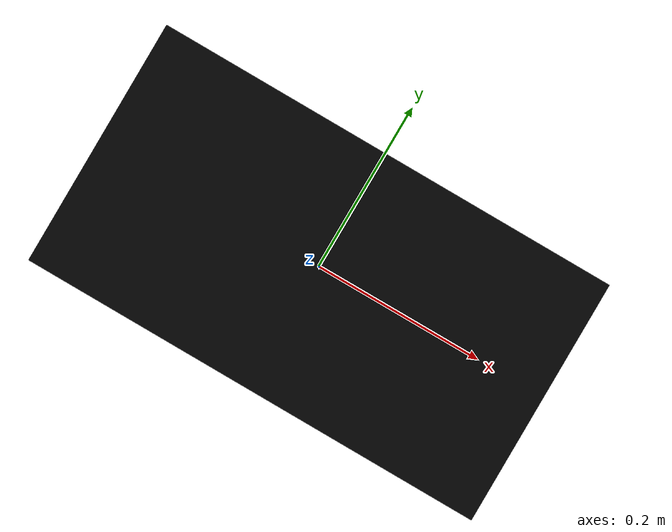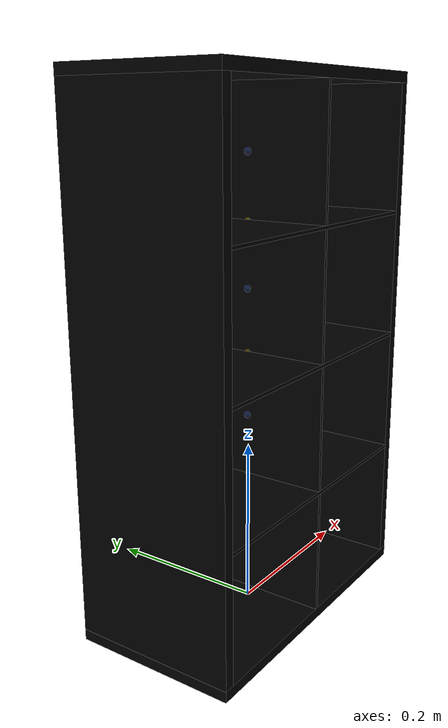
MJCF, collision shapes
<mujoco model="bookcase_expedit_0376">
  <custom>
    <numeric data="-0.610358 0.179496 0.00633 0.707062 -0.007954 -0.707062 -0.007954" name="0_part0_initpos" />
    <numeric data="0.140723 0.068538 0.00633 0.999959 -0.0 -0.0 -0.009001" name="10_part9_initpos" />
    <numeric data="0.565507 -0.128144 0.001878 0.999962 0.0 -0.0 -0.008745" name="9_part8_initpos" />
    <numeric data="0.543897 0.119211 0.001878 0.999936 0.0 -0.0 0.011288" name="8_part7_initpos" />
    <numeric data="0.135882 0.347456 0.001878 0.999938 0.0 0.0 0.011097" name="7_part6_initpos" />
    <numeric data="-0.403732 -0.095554 0.001982 0.707107 1.5e-05 -0.707107 1.4e-05" name="6_part5_initpos" />
    <numeric data="0.248668 -0.151192 0.001878 0.498788 0.501209 0.498788 -0.501209" name="5_part4_initpos" />
    <numeric data="0.040847 -0.184879 0.001878 0.707089 -0.005013 -0.707089 -0.005013" name="4_part3_initpos" />
    <numeric data="-0.59904 -0.091625 0.001878 0.706827 -0.019886 -0.706827 -0.019886" name="3_part2_initpos" />
    <numeric data="0.531999 0.371208 0.00633 1.0 -0.0 0.0 -5e-06" name="2_part10_initpos" />
    <numeric data="-0.187738 0.117936 0.00633 -0.499983 -0.500017 0.499983 -0.500017" name="1_part1_initpos" />
  </custom>
  <asset>
    <mesh file="bookcase_expedit_0376/0.stl" name="part0" scale="0.000250416 0.000250416 0.000250416" />
    <mesh file="bookcase_expedit_0376/9.stl" name="part9" scale="0.000250416 0.000250416 0.000250416" />
    <mesh file="bookcase_expedit_0376/8.stl" name="part8" scale="0.000250416 0.000250416 0.000250416" />
    <mesh file="bookcase_expedit_0376/7.stl" name="part7" scale="0.000250416 0.000250416 0.000250416" />
    <mesh file="bookcase_expedit_0376/6.stl" name="part6" scale="0.000250416 0.000250416 0.000250416" />
    <mesh file="bookcase_expedit_0376/5.stl" name="part5" scale="0.000250416 0.000250416 0.000250416" />
    <mesh file="bookcase_expedit_0376/4.stl" name="part4" scale="0.000250416 0.000250416 0.000250416" />
    <mesh file="bookcase_expedit_0376/3.stl" name="part3" scale="0.000250416 0.000250416 0.000250416" />
    <mesh file="bookcase_expedit_0376/2.stl" name="part2" scale="0.000250416 0.000250416 0.000250416" />
    <mesh file="bookcase_expedit_0376/10.stl" name="part10" scale="0.000250416 0.000250416 0.000250416" />
    <mesh file="bookcase_expedit_0376/1.stl" name="part1" scale="0.000250416 0.000250416 0.000250416" />
  </asset>
  <worldbody><body name="combined_body" pos="0.18 0 0.316126904" quat="1 0 0 0"><geom conaffinity="0" contype="0" density="0" mesh="part0" name="0_part0_mesh" pos="0.0 0.0 -3.0049919999999998e-09" rgba="0.82 0.71 0.55 1" type="mesh" quat="1 0 0 0" />
      <geom density="50" name="noviz_collision_0_part1_0" pos="0.0 0.0 -3.0049919999999998e-09" quat="1 0 0 0" rgba="0 0 0 0" size="0.00637111893024 0.09898631460000001 0.30212690400000003" solref="0.001 1" type="box" />
    <site name="0_part0_horizontal_radius_site" pos="0.0 0.0 -3.0049919999999998e-09" quat="1 0 0 0" rgba="0 0 0 0" size="0.000250416" />
      <site name="0_part0_top_site" pos="0.0 0.0 -3.0049919999999998e-09" quat="1 0 0 0" rgba="0 0 0 0" size="0.000250416" />
      <site name="0_part0_bottom_site" pos="0.0 0.0 -3.0049919999999998e-09" quat="1 0 0 0" rgba="0 0 0 0" size="0.000250416" />
      <site name="0_part0_corner_site8" pos="0.0 0.0 -3.0049919999999998e-09" quat="1 0 0 0" rgba="0 0 0 0" size="0.00500832" />
      <site name="0_part0_corner_site7" pos="0.0 0.0 -3.0049919999999998e-09" quat="1 0 0 0" rgba="0 0 0 0" size="0.00500832" />
      <site name="0_part0_corner_site6" pos="0.0 0.0 -3.0049919999999998e-09" quat="1 0 0 0" rgba="0 0 0 0" size="0.00500832" />
      <site name="0_part0_corner_site5" pos="0.0 0.0 -3.0049919999999998e-09" quat="1 0 0 0" rgba="0 0 0 0" size="0.00500832" />
      <site name="0_part0_corner_site4" pos="0.0 0.0 -3.0049919999999998e-09" quat="1 0 0 0" rgba="0 0 0 0" size="0.00500832" />
      <site name="0_part0_corner_site3" pos="0.0 0.0 -3.0049919999999998e-09" quat="1 0 0 0" rgba="0 0 0 0" size="0.00500832" />
      <site name="0_part0_corner_site2" pos="0.0 0.0 -3.0049919999999998e-09" quat="1 0 0 0" rgba="0 0 0 0" size="0.00500832" />
      <site name="0_part0_corner_site1" pos="0.0 0.0 -3.0049919999999998e-09" quat="1 0 0 0" rgba="0 0 0 0" size="0.00500832" />
      <site name="rightwall-floor,0,conn_site1" pos="0.0 0.0 -3.0049919999999998e-09" quat="1 0 0 0" rgba="0.9019 0.0980 0.2941 0.3" size="0.00500832" />
      <site name="rightwall-top,0,conn_site1" pos="0.0 0.0 -3.0049919999999998e-09" quat="1 0 0 0" rgba="0.2352 0.7058 0.2941 0.3" size="0.00500832" />
      <geom conaffinity="0" contype="0" density="0" mesh="part9" name="10_part9_mesh" pos="-0.18008353620000003 -1.5275376000000001e-09 0.30848746439001606" rgba="0.82 0.71 0.55 1" type="mesh" quat="1 0 0 0" />
      <geom density="50" name="noviz_collision_10_part9_0" pos="-0.18008353620000003 -1.5275376000000001e-09 0.30848746439001606" quat="1 0 0 0" rgba="0 0 0 0" size="0.18644410260000002 0.09898631460000001 0.006360571408320001" solref="0.001 1" type="box" />
    <site name="10_part9_horizontal_radius_site" pos="-0.18008353620000003 -1.5275376000000001e-09 0.30848746439001606" quat="1 0 0 0" rgba="0 0 0 0" size="0.000250416" />
      <site name="10_part9_top_site" pos="-0.18008353620000003 -1.5275376000000001e-09 0.30848746439001606" quat="1 0 0 0" rgba="0 0 0 0" size="0.000250416" />
      <site name="10_part9_bottom_site" pos="-0.18008353620000003 -1.5275376000000001e-09 0.30848746439001606" quat="1 0 0 0" rgba="0 0 0 0" size="0.000250416" />
      <site name="10_part9_corner_site8" pos="-0.18008353620000003 -1.5275376000000001e-09 0.30848746439001606" quat="1 0 0 0" rgba="0 0 0 0" size="0.00500832" />
      <site name="10_part9_corner_site7" pos="-0.18008353620000003 -1.5275376000000001e-09 0.30848746439001606" quat="1 0 0 0" rgba="0 0 0 0" size="0.00500832" />
      <site name="10_part9_corner_site6" pos="-0.18008353620000003 -1.5275376000000001e-09 0.30848746439001606" quat="1 0 0 0" rgba="0 0 0 0" size="0.00500832" />
      <site name="10_part9_corner_site5" pos="-0.18008353620000003 -1.5275376000000001e-09 0.30848746439001606" quat="1 0 0 0" rgba="0 0 0 0" size="0.00500832" />
      <site name="10_part9_corner_site4" pos="-0.18008353620000003 -1.5275376000000001e-09 0.30848746439001606" quat="1 0 0 0" rgba="0 0 0 0" size="0.00500832" />
      <site name="10_part9_corner_site3" pos="-0.18008353620000003 -1.5275376000000001e-09 0.30848746439001606" quat="1 0 0 0" rgba="0 0 0 0" size="0.00500832" />
      <site name="10_part9_corner_site2" pos="-0.18008353620000003 -1.5275376000000001e-09 0.30848746439001606" quat="1 0 0 0" rgba="0 0 0 0" size="0.00500832" />
      <site name="10_part9_corner_site1" pos="-0.18008353620000003 -1.5275376000000001e-09 0.30848746439001606" quat="1 0 0 0" rgba="0 0 0 0" size="0.00500832" />
      <site name="top-rightwall,0,conn_site1" pos="-0.18008353620000003 -1.5275376000000001e-09 0.30848746439001606" quat="1 0 0 0" rgba="0.2352 0.7058 0.2941 0.3" size="0.00500832" />
      <geom conaffinity="0" contype="0" density="0" mesh="part8" name="9_part8_mesh" pos="-0.18008353620000003 0.0 -6.0099839999999996e-09" rgba="0.82 0.71 0.55 1" type="mesh" quat="1 0 0 0" />
      <geom density="50" name="noviz_collision_9_part8_0" pos="-0.18008353620000003 0.0 -6.0099839999999996e-09" quat="1 0 0 0" rgba="0 0 0 0" size="0.1737229698 0.09898631460000001 0.00190816992" solref="0.001 1" type="box" />
    <site name="9_part8_horizontal_radius_site" pos="-0.18008353620000003 0.0 -6.0099839999999996e-09" quat="1 0 0 0" rgba="0 0 0 0" size="0.000250416" />
      <site name="9_part8_top_site" pos="-0.18008353620000003 0.0 -6.0099839999999996e-09" quat="1 0 0 0" rgba="0 0 0 0" size="0.000250416" />
      <site name="9_part8_bottom_site" pos="-0.18008353620000003 0.0 -6.0099839999999996e-09" quat="1 0 0 0" rgba="0 0 0 0" size="0.000250416" />
      <site name="9_part8_corner_site8" pos="-0.18008353620000003 0.0 -6.0099839999999996e-09" quat="1 0 0 0" rgba="0 0 0 0" size="0.00500832" />
      <site name="9_part8_corner_site7" pos="-0.18008353620000003 0.0 -6.0099839999999996e-09" quat="1 0 0 0" rgba="0 0 0 0" size="0.00500832" />
      <site name="9_part8_corner_site6" pos="-0.18008353620000003 0.0 -6.0099839999999996e-09" quat="1 0 0 0" rgba="0 0 0 0" size="0.00500832" />
      <site name="9_part8_corner_site5" pos="-0.18008353620000003 0.0 -6.0099839999999996e-09" quat="1 0 0 0" rgba="0 0 0 0" size="0.00500832" />
      <site name="9_part8_corner_site4" pos="-0.18008353620000003 0.0 -6.0099839999999996e-09" quat="1 0 0 0" rgba="0 0 0 0" size="0.00500832" />
      <site name="9_part8_corner_site3" pos="-0.18008353620000003 0.0 -6.0099839999999996e-09" quat="1 0 0 0" rgba="0 0 0 0" size="0.00500832" />
      <site name="9_part8_corner_site2" pos="-0.18008353620000003 0.0 -6.0099839999999996e-09" quat="1 0 0 0" rgba="0 0 0 0" size="0.00500832" />
      <site name="9_part8_corner_site1" pos="-0.18008353620000003 0.0 -6.0099839999999996e-09" quat="1 0 0 0" rgba="0 0 0 0" size="0.00500832" />
      <site name="shelf-leftwall,0,conn_site2" pos="-0.18008353620000003 0.0 -6.0099839999999996e-09" quat="1 0 0 0" rgba="1.0 0.8823 0.0980 0.3" size="0.00500832" />
      <site name="floor-divider,0,180,conn_site3" pos="-0.18008353620000003 0.0 -6.0099839999999996e-09" quat="1 0 0 0" rgba="0.2627 0.3882 0.8470 0.3" size="0.00500832" />
      <geom conaffinity="0" contype="0" density="0" mesh="part7" name="8_part7_mesh" pos="-0.18008353620000003 0.0 -0.15201754296998402" rgba="0.82 0.71 0.55 1" type="mesh" quat="1 0 0 0" />
      <geom density="50" name="noviz_collision_8_part7_0" pos="-0.18008353620000003 0.0 -0.15201754296998402" quat="1 0 0 0" rgba="0 0 0 0" size="0.1737229698 0.09898631460000001 0.0019081849449599998" solref="0.001 1" type="box" />
    <site name="8_part7_horizontal_radius_site" pos="-0.18008353620000003 0.0 -0.15201754296998402" quat="1 0 0 0" rgba="0 0 0 0" size="0.000250416" />
      <site name="8_part7_top_site" pos="-0.18008353620000003 0.0 -0.15201754296998402" quat="1 0 0 0" rgba="0 0 0 0" size="0.000250416" />
      <site name="8_part7_bottom_site" pos="-0.18008353620000003 0.0 -0.15201754296998402" quat="1 0 0 0" rgba="0 0 0 0" size="0.000250416" />
      <site name="8_part7_corner_site8" pos="-0.18008353620000003 0.0 -0.15201754296998402" quat="1 0 0 0" rgba="0 0 0 0" size="0.00500832" />
      <site name="8_part7_corner_site7" pos="-0.18008353620000003 0.0 -0.15201754296998402" quat="1 0 0 0" rgba="0 0 0 0" size="0.00500832" />
      <site name="8_part7_corner_site6" pos="-0.18008353620000003 0.0 -0.15201754296998402" quat="1 0 0 0" rgba="0 0 0 0" size="0.00500832" />
      <site name="8_part7_corner_site5" pos="-0.18008353620000003 0.0 -0.15201754296998402" quat="1 0 0 0" rgba="0 0 0 0" size="0.00500832" />
      <site name="8_part7_corner_site4" pos="-0.18008353620000003 0.0 -0.15201754296998402" quat="1 0 0 0" rgba="0 0 0 0" size="0.00500832" />
      <site name="8_part7_corner_site3" pos="-0.18008353620000003 0.0 -0.15201754296998402" quat="1 0 0 0" rgba="0 0 0 0" size="0.00500832" />
      <site name="8_part7_corner_site2" pos="-0.18008353620000003 0.0 -0.15201754296998402" quat="1 0 0 0" rgba="0 0 0 0" size="0.00500832" />
      <site name="8_part7_corner_site1" pos="-0.18008353620000003 0.0 -0.15201754296998402" quat="1 0 0 0" rgba="0 0 0 0" size="0.00500832" />
      <site name="shelf-leftwall,0,conn_site1" pos="-0.18008353620000003 0.0 -0.15201754296998402" quat="1 0 0 0" rgba="1.0 0.8823 0.0980 0.3" size="0.00500832" />
      <site name="floor-divider,0,180,conn_site2" pos="-0.18008353620000003 0.0 -0.15201754296998402" quat="1 0 0 0" rgba="0.2627 0.3882 0.8470 0.3" size="0.00500832" />
      <geom conaffinity="0" contype="0" density="0" mesh="part6" name="7_part6_mesh" pos="-0.18008353620000003 0.0 0.1520175297480192" rgba="0.82 0.71 0.55 1" type="mesh" quat="1 0 0 0" />
      <geom density="50" name="noviz_collision_7_part6_0" pos="-0.18008353620000003 0.0 0.1520175297480192" quat="1 0 0 0" rgba="0 0 0 0" size="0.1737229698 0.09898631460000001 0.0019081849449599998" solref="0.001 1" type="box" />
    <site name="7_part6_horizontal_radius_site" pos="-0.18008353620000003 0.0 0.1520175297480192" quat="1 0 0 0" rgba="0 0 0 0" size="0.000250416" />
      <site name="7_part6_top_site" pos="-0.18008353620000003 0.0 0.1520175297480192" quat="1 0 0 0" rgba="0 0 0 0" size="0.000250416" />
      <site name="7_part6_bottom_site" pos="-0.18008353620000003 0.0 0.1520175297480192" quat="1 0 0 0" rgba="0 0 0 0" size="0.000250416" />
      <site name="7_part6_corner_site8" pos="-0.18008353620000003 0.0 0.1520175297480192" quat="1 0 0 0" rgba="0 0 0 0" size="0.00500832" />
      <site name="7_part6_corner_site7" pos="-0.18008353620000003 0.0 0.1520175297480192" quat="1 0 0 0" rgba="0 0 0 0" size="0.00500832" />
      <site name="7_part6_corner_site6" pos="-0.18008353620000003 0.0 0.1520175297480192" quat="1 0 0 0" rgba="0 0 0 0" size="0.00500832" />
      <site name="7_part6_corner_site5" pos="-0.18008353620000003 0.0 0.1520175297480192" quat="1 0 0 0" rgba="0 0 0 0" size="0.00500832" />
      <site name="7_part6_corner_site4" pos="-0.18008353620000003 0.0 0.1520175297480192" quat="1 0 0 0" rgba="0 0 0 0" size="0.00500832" />
      <site name="7_part6_corner_site3" pos="-0.18008353620000003 0.0 0.1520175297480192" quat="1 0 0 0" rgba="0 0 0 0" size="0.00500832" />
      <site name="7_part6_corner_site2" pos="-0.18008353620000003 0.0 0.1520175297480192" quat="1 0 0 0" rgba="0 0 0 0" size="0.00500832" />
      <site name="7_part6_corner_site1" pos="-0.18008353620000003 0.0 0.1520175297480192" quat="1 0 0 0" rgba="0 0 0 0" size="0.00500832" />
      <site name="shelf-leftwall,0,conn_site3" pos="-0.18008353620000003 0.0 0.1520175297480192" quat="1 0 0 0" rgba="1.0 0.8823 0.0980 0.3" size="0.00500832" />
      <site name="floor-divider,0,180,conn_site4" pos="-0.18008353620000003 0.0 0.1520175297480192" quat="1 0 0 0" rgba="0.2627 0.3882 0.8470 0.3" size="0.00500832" />
      <geom conaffinity="0" contype="0" density="0" mesh="part5" name="6_part5_mesh" pos="-0.18008353620000003 0.0 0.22802630308608962" rgba="0.82 0.71 0.55 1" type="mesh" quat="1 0 0 0" />
      <geom density="50" name="noviz_collision_6_part5_0" pos="-0.18008353620000003 0.0 0.22802630308608962" quat="1 0 0 0" rgba="0 0 0 0" size="0.00190816992 0.09898631460000001 0.07410059856000001" solref="0.001 1" type="box" />
    <site name="6_part5_horizontal_radius_site" pos="-0.18008353620000003 0.0 0.22802630308608962" quat="1 0 0 0" rgba="0 0 0 0" size="0.000250416" />
      <site name="6_part5_top_site" pos="-0.18008353620000003 0.0 0.22802630308608962" quat="1 0 0 0" rgba="0 0 0 0" size="0.000250416" />
      <site name="6_part5_bottom_site" pos="-0.18008353620000003 0.0 0.22802630308608962" quat="1 0 0 0" rgba="0 0 0 0" size="0.000250416" />
      <site name="6_part5_corner_site8" pos="-0.18008353620000003 0.0 0.22802630308608962" quat="1 0 0 0" rgba="0 0 0 0" size="0.00500832" />
      <site name="6_part5_corner_site7" pos="-0.18008353620000003 0.0 0.22802630308608962" quat="1 0 0 0" rgba="0 0 0 0" size="0.00500832" />
      <site name="6_part5_corner_site6" pos="-0.18008353620000003 0.0 0.22802630308608962" quat="1 0 0 0" rgba="0 0 0 0" size="0.00500832" />
      <site name="6_part5_corner_site5" pos="-0.18008353620000003 0.0 0.22802630308608962" quat="1 0 0 0" rgba="0 0 0 0" size="0.00500832" />
      <site name="6_part5_corner_site4" pos="-0.18008353620000003 0.0 0.22802630308608962" quat="1 0 0 0" rgba="0 0 0 0" size="0.00500832" />
      <site name="6_part5_corner_site3" pos="-0.18008353620000003 0.0 0.22802630308608962" quat="1 0 0 0" rgba="0 0 0 0" size="0.00500832" />
      <site name="6_part5_corner_site2" pos="-0.18008353620000003 0.0 0.22802630308608962" quat="1 0 0 0" rgba="0 0 0 0" size="0.00500832" />
      <site name="6_part5_corner_site1" pos="-0.18008353620000003 0.0 0.22802630308608962" quat="1 0 0 0" rgba="0 0 0 0" size="0.00500832" />
      <site name="divider-floor,0,180,conn_site4" pos="-0.18008353620000003 0.0 0.22802630308608962" quat="1 0 0 0" rgba="0.2627 0.3882 0.8470 0.3" size="0.00500832" />
      <geom conaffinity="0" contype="0" density="0" mesh="part4" name="5_part4_mesh" pos="-0.18008353620000003 0.0 0.07600875327974882" rgba="0.82 0.71 0.55 1" type="mesh" quat="1 0 0 0" />
      <geom density="50" name="noviz_collision_5_part4_0" pos="-0.18008353620000003 0.0 0.07600875327974882" quat="1 0 0 0" rgba="0 0 0 0" size="0.00190816992 0.09898631460000001 0.0741006236016" solref="0.001 1" type="box" />
    <site name="5_part4_horizontal_radius_site" pos="-0.18008353620000003 0.0 0.07600875327974882" quat="1 0 0 0" rgba="0 0 0 0" size="0.000250416" />
      <site name="5_part4_top_site" pos="-0.18008353620000003 0.0 0.07600875327974882" quat="1 0 0 0" rgba="0 0 0 0" size="0.000250416" />
      <site name="5_part4_bottom_site" pos="-0.18008353620000003 0.0 0.07600875327974882" quat="1 0 0 0" rgba="0 0 0 0" size="0.000250416" />
      <site name="5_part4_corner_site8" pos="-0.18008353620000003 0.0 0.07600875327974882" quat="1 0 0 0" rgba="0 0 0 0" size="0.00500832" />
      <site name="5_part4_corner_site7" pos="-0.18008353620000003 0.0 0.07600875327974882" quat="1 0 0 0" rgba="0 0 0 0" size="0.00500832" />
      <site name="5_part4_corner_site6" pos="-0.18008353620000003 0.0 0.07600875327974882" quat="1 0 0 0" rgba="0 0 0 0" size="0.00500832" />
      <site name="5_part4_corner_site5" pos="-0.18008353620000003 0.0 0.07600875327974882" quat="1 0 0 0" rgba="0 0 0 0" size="0.00500832" />
      <site name="5_part4_corner_site4" pos="-0.18008353620000003 0.0 0.07600875327974882" quat="1 0 0 0" rgba="0 0 0 0" size="0.00500832" />
      <site name="5_part4_corner_site3" pos="-0.18008353620000003 0.0 0.07600875327974882" quat="1 0 0 0" rgba="0 0 0 0" size="0.00500832" />
      <site name="5_part4_corner_site2" pos="-0.18008353620000003 0.0 0.07600875327974882" quat="1 0 0 0" rgba="0 0 0 0" size="0.00500832" />
      <site name="5_part4_corner_site1" pos="-0.18008353620000003 0.0 0.07600875327974882" quat="1 0 0 0" rgba="0 0 0 0" size="0.00500832" />
      <site name="divider-floor,0,180,conn_site3" pos="-0.18008353620000003 0.0 0.07600875327974882" quat="1 0 0 0" rgba="0.2627 0.3882 0.8470 0.3" size="0.00500832" />
      <geom conaffinity="0" contype="0" density="0" mesh="part3" name="4_part3_mesh" pos="-0.18008353620000003 0.0 -0.22802631155015038" rgba="0.82 0.71 0.55 1" type="mesh" quat="1 0 0 0" />
      <geom density="50" name="noviz_collision_4_part3_0" pos="-0.18008353620000003 0.0 -0.22802631155015038" quat="1 0 0 0" rgba="0 0 0 0" size="0.00190816992 0.09898631460000001 0.07410059856000001" solref="0.001 1" type="box" />
    <site name="4_part3_horizontal_radius_site" pos="-0.18008353620000003 0.0 -0.22802631155015038" quat="1 0 0 0" rgba="0 0 0 0" size="0.000250416" />
      <site name="4_part3_top_site" pos="-0.18008353620000003 0.0 -0.22802631155015038" quat="1 0 0 0" rgba="0 0 0 0" size="0.000250416" />
      <site name="4_part3_bottom_site" pos="-0.18008353620000003 0.0 -0.22802631155015038" quat="1 0 0 0" rgba="0 0 0 0" size="0.000250416" />
      <site name="4_part3_corner_site8" pos="-0.18008353620000003 0.0 -0.22802631155015038" quat="1 0 0 0" rgba="0 0 0 0" size="0.00500832" />
      <site name="4_part3_corner_site7" pos="-0.18008353620000003 0.0 -0.22802631155015038" quat="1 0 0 0" rgba="0 0 0 0" size="0.00500832" />
      <site name="4_part3_corner_site6" pos="-0.18008353620000003 0.0 -0.22802631155015038" quat="1 0 0 0" rgba="0 0 0 0" size="0.00500832" />
      <site name="4_part3_corner_site5" pos="-0.18008353620000003 0.0 -0.22802631155015038" quat="1 0 0 0" rgba="0 0 0 0" size="0.00500832" />
      <site name="4_part3_corner_site4" pos="-0.18008353620000003 0.0 -0.22802631155015038" quat="1 0 0 0" rgba="0 0 0 0" size="0.00500832" />
      <site name="4_part3_corner_site3" pos="-0.18008353620000003 0.0 -0.22802631155015038" quat="1 0 0 0" rgba="0 0 0 0" size="0.00500832" />
      <site name="4_part3_corner_site2" pos="-0.18008353620000003 0.0 -0.22802631155015038" quat="1 0 0 0" rgba="0 0 0 0" size="0.00500832" />
      <site name="4_part3_corner_site1" pos="-0.18008353620000003 0.0 -0.22802631155015038" quat="1 0 0 0" rgba="0 0 0 0" size="0.00500832" />
      <site name="divider-floor,0,180,conn_site1" pos="-0.18008353620000003 0.0 -0.22802631155015038" quat="1 0 0 0" rgba="0.2627 0.3882 0.8470 0.3" size="0.00500832" />
      <geom conaffinity="0" contype="0" density="0" mesh="part2" name="3_part2_mesh" pos="-0.18008353620000003 0.0 -0.076008769606872" rgba="0.82 0.71 0.55 1" type="mesh" quat="1 0 0 0" />
      <geom density="50" name="noviz_collision_3_part2_0" pos="-0.18008353620000003 0.0 -0.076008769606872" quat="1 0 0 0" rgba="0 0 0 0" size="0.00190816992 0.09898631460000001 0.07410059856000001" solref="0.001 1" type="box" />
    <site name="3_part2_horizontal_radius_site" pos="-0.18008353620000003 0.0 -0.076008769606872" quat="1 0 0 0" rgba="0 0 0 0" size="0.000250416" />
      <site name="3_part2_top_site" pos="-0.18008353620000003 0.0 -0.076008769606872" quat="1 0 0 0" rgba="0 0 0 0" size="0.000250416" />
      <site name="3_part2_bottom_site" pos="-0.18008353620000003 0.0 -0.076008769606872" quat="1 0 0 0" rgba="0 0 0 0" size="0.000250416" />
      <site name="3_part2_corner_site8" pos="-0.18008353620000003 0.0 -0.076008769606872" quat="1 0 0 0" rgba="0 0 0 0" size="0.00500832" />
      <site name="3_part2_corner_site7" pos="-0.18008353620000003 0.0 -0.076008769606872" quat="1 0 0 0" rgba="0 0 0 0" size="0.00500832" />
      <site name="3_part2_corner_site6" pos="-0.18008353620000003 0.0 -0.076008769606872" quat="1 0 0 0" rgba="0 0 0 0" size="0.00500832" />
      <site name="3_part2_corner_site5" pos="-0.18008353620000003 0.0 -0.076008769606872" quat="1 0 0 0" rgba="0 0 0 0" size="0.00500832" />
      <site name="3_part2_corner_site4" pos="-0.18008353620000003 0.0 -0.076008769606872" quat="1 0 0 0" rgba="0 0 0 0" size="0.00500832" />
      <site name="3_part2_corner_site3" pos="-0.18008353620000003 0.0 -0.076008769606872" quat="1 0 0 0" rgba="0 0 0 0" size="0.00500832" />
      <site name="3_part2_corner_site2" pos="-0.18008353620000003 0.0 -0.076008769606872" quat="1 0 0 0" rgba="0 0 0 0" size="0.00500832" />
      <site name="3_part2_corner_site1" pos="-0.18008353620000003 0.0 -0.076008769606872" quat="1 0 0 0" rgba="0 0 0 0" size="0.00500832" />
      <site name="divider-floor,0,180,conn_site2" pos="-0.18008353620000003 0.0 -0.076008769606872" quat="1 0 0 0" rgba="0.2627 0.3882 0.8470 0.3" size="0.00500832" />
      <geom conaffinity="0" contype="0" density="0" mesh="part10" name="2_part10_mesh" pos="-0.18008353620000003 -1.5275376000000001e-09 -0.30848747640998403" rgba="0.82 0.71 0.55 1" type="mesh" quat="1 0 0 0" />
      <geom density="50" name="noviz_collision_2_part10_0" pos="-0.18008353620000003 -1.5275376000000001e-09 -0.30848747640998403" quat="1 0 0 0" rgba="0 0 0 0" size="0.18644410260000002 0.09898631460000001 0.006360571408320001" solref="0.001 1" type="box" />
    <site name="2_part10_horizontal_radius_site" pos="-0.18008353620000003 -1.5275376000000001e-09 -0.30848747640998403" quat="1 0 0 0" rgba="0 0 0 0" size="0.000250416" />
      <site name="2_part10_top_site" pos="-0.18008353620000003 -1.5275376000000001e-09 -0.30848747640998403" quat="1 0 0 0" rgba="0 0 0 0" size="0.000250416" />
      <site name="2_part10_bottom_site" pos="-0.18008353620000003 -1.5275376000000001e-09 -0.30848747640998403" quat="1 0 0 0" rgba="0 0 0 0" size="0.000250416" />
      <site name="2_part10_corner_site8" pos="-0.18008353620000003 -1.5275376000000001e-09 -0.30848747640998403" quat="1 0 0 0" rgba="0 0 0 0" size="0.00500832" />
      <site name="2_part10_corner_site7" pos="-0.18008353620000003 -1.5275376000000001e-09 -0.30848747640998403" quat="1 0 0 0" rgba="0 0 0 0" size="0.00500832" />
      <site name="2_part10_corner_site6" pos="-0.18008353620000003 -1.5275376000000001e-09 -0.30848747640998403" quat="1 0 0 0" rgba="0 0 0 0" size="0.00500832" />
      <site name="2_part10_corner_site5" pos="-0.18008353620000003 -1.5275376000000001e-09 -0.30848747640998403" quat="1 0 0 0" rgba="0 0 0 0" size="0.00500832" />
      <site name="2_part10_corner_site4" pos="-0.18008353620000003 -1.5275376000000001e-09 -0.30848747640998403" quat="1 0 0 0" rgba="0 0 0 0" size="0.00500832" />
      <site name="2_part10_corner_site3" pos="-0.18008353620000003 -1.5275376000000001e-09 -0.30848747640998403" quat="1 0 0 0" rgba="0 0 0 0" size="0.00500832" />
      <site name="2_part10_corner_site2" pos="-0.18008353620000003 -1.5275376000000001e-09 -0.30848747640998403" quat="1 0 0 0" rgba="0 0 0 0" size="0.00500832" />
      <site name="2_part10_corner_site1" pos="-0.18008353620000003 -1.5275376000000001e-09 -0.30848747640998403" quat="1 0 0 0" rgba="0 0 0 0" size="0.00500832" />
      <site name="bottom-leftwall,0,conn_site1" pos="-0.18008353620000003 -1.5275376000000001e-09 -0.30848747640998403" quat="1 0 0 0" rgba="0.9607 0.5098 0.1921 0.3" size="0.00500832" />
      <site name="floor-divider,0,180,conn_site1" pos="-0.18008353620000003 -1.5275376000000001e-09 -0.30848747640998403" quat="1 0 0 0" rgba="0.2627 0.3882 0.8470 0.3" size="0.00500832" />
      <site name="floor-rightwall,0,conn_site1" pos="-0.18008353620000003 -1.5275376000000001e-09 -0.30848747640998403" quat="1 0 0 0" rgba="0.9019 0.0980 0.2941 0.3" size="0.00500832" />
      <geom conaffinity="0" contype="0" density="0" mesh="part1" name="1_part1_mesh" pos="-0.36016707240000007 0.0 -3.0049919999999998e-09" rgba="0.82 0.71 0.55 1" type="mesh" quat="1 0 0 0" />
      <geom density="50" name="noviz_collision_1_part1_0" pos="-0.36016707240000007 0.0 -3.0049919999999998e-09" quat="1 0 0 0" rgba="0 0 0 0" size="0.00637111893024 0.09898631460000001 0.30212690400000003" solref="0.001 1" type="box" />
    <site name="1_part1_horizontal_radius_site" pos="-0.36016707240000007 0.0 -3.0049919999999998e-09" quat="1 0 0 0" rgba="0 0 0 0" size="0.000250416" />
      <site name="1_part1_top_site" pos="-0.36016707240000007 0.0 -3.0049919999999998e-09" quat="1 0 0 0" rgba="0 0 0 0" size="0.000250416" />
      <site name="1_part1_bottom_site" pos="-0.36016707240000007 0.0 -3.0049919999999998e-09" quat="1 0 0 0" rgba="0 0 0 0" size="0.000250416" />
      <site name="1_part1_corner_site8" pos="-0.36016707240000007 0.0 -3.0049919999999998e-09" quat="1 0 0 0" rgba="0 0 0 0" size="0.00500832" />
      <site name="1_part1_corner_site7" pos="-0.36016707240000007 0.0 -3.0049919999999998e-09" quat="1 0 0 0" rgba="0 0 0 0" size="0.00500832" />
      <site name="1_part1_corner_site6" pos="-0.36016707240000007 0.0 -3.0049919999999998e-09" quat="1 0 0 0" rgba="0 0 0 0" size="0.00500832" />
      <site name="1_part1_corner_site5" pos="-0.36016707240000007 0.0 -3.0049919999999998e-09" quat="1 0 0 0" rgba="0 0 0 0" size="0.00500832" />
      <site name="1_part1_corner_site4" pos="-0.36016707240000007 0.0 -3.0049919999999998e-09" quat="1 0 0 0" rgba="0 0 0 0" size="0.00500832" />
      <site name="1_part1_corner_site3" pos="-0.36016707240000007 0.0 -3.0049919999999998e-09" quat="1 0 0 0" rgba="0 0 0 0" size="0.00500832" />
      <site name="1_part1_corner_site2" pos="-0.36016707240000007 0.0 -3.0049919999999998e-09" quat="1 0 0 0" rgba="0 0 0 0" size="0.00500832" />
      <site name="1_part1_corner_site1" pos="-0.36016707240000007 0.0 -3.0049919999999998e-09" quat="1 0 0 0" rgba="0 0 0 0" size="0.00500832" />
      <site name="leftwall-shelf,0,conn_site3" pos="-0.36016707240000007 0.0 -3.0049919999999998e-09" quat="1 0 0 0" rgba="1.0 0.8823 0.0980 0.3" size="0.00500832" />
      <site name="leftwall-shelf,0,conn_site2" pos="-0.36016707240000007 0.0 -3.0049919999999998e-09" quat="1 0 0 0" rgba="1.0 0.8823 0.0980 0.3" size="0.00500832" />
      <site name="leftwall-shelf,0,conn_site1" pos="-0.36016707240000007 0.0 -3.0049919999999998e-09" quat="1 0 0 0" rgba="1.0 0.8823 0.0980 0.3" size="0.00500832" />
      <site name="leftwall-bottom,0,conn_site1" pos="-0.36016707240000007 0.0 -3.0049919999999998e-09" quat="1 0 0 0" rgba="0.9607 0.5098 0.1921 0.3" size="0.00500832" />
      </body></worldbody><actuator />
  <sensor />
  <contact />
  <default />
</mujoco>
